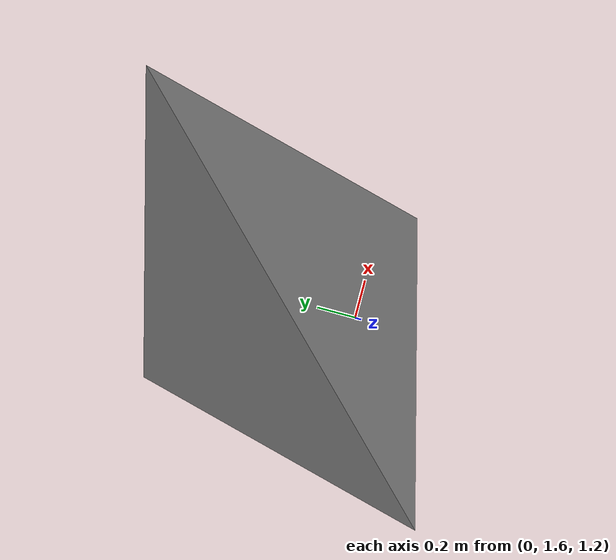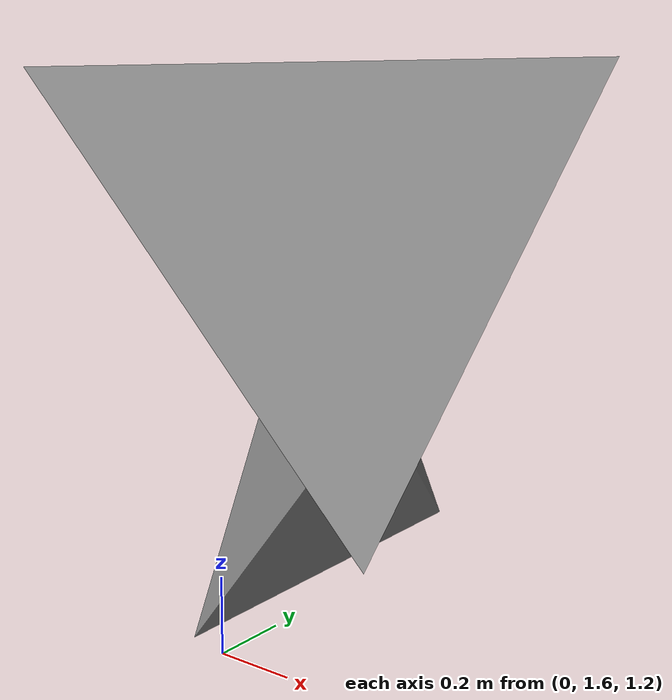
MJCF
<mujoco>
  <asset>
	<mesh name="poly" scale="0.5 0.5 0.5"
	 vertex="0.3 0 0  0 0.5 0  -0.3 0 0  0 -0.5 0  0 -1 1  0 1 1"
	 face="0 1 5  0 5 4  0 4 3  3 4 2  2 4 5  1 2 5  0 2 1  0 3 2"/>
	<mesh name="tetrahedron"  scale="0.5 0.5 0.5"
	  vertex="1 1 1  -1 -1 1  1 -1 -1  -1 1 -1"
	  face="0 1 2  0 3 1  0 2 3  1 3 2"/>
  </asset>
  <custom>
	<numeric data="2" name="max_contact_points"/>
  </custom>
  <worldbody>
	<light pos="-.5 .7 1.5" cutoff="55"/>
	<body pos="0.0 2.0 1.781" euler="180 0 0">
	  <freejoint/>
	  <geom type="mesh" mesh="poly"/>
	</body>
	<body pos="0.0 2.0 2.081">
	  <freejoint/>
	  <geom type="mesh" mesh="tetrahedron"/>
	</body>
  </worldbody>
</mujoco>
